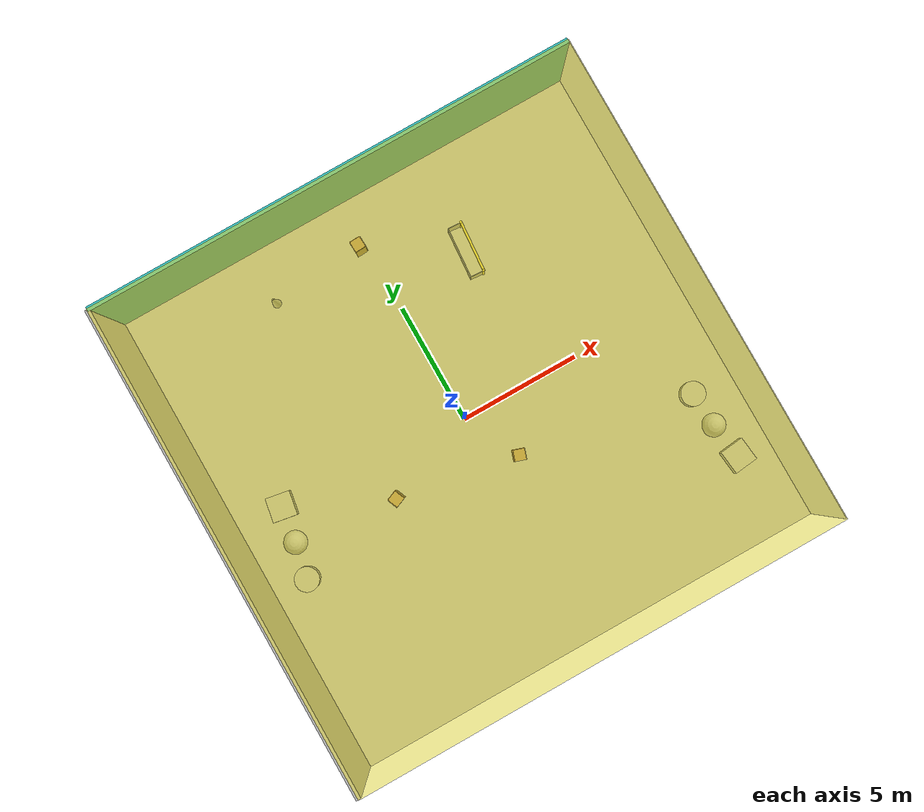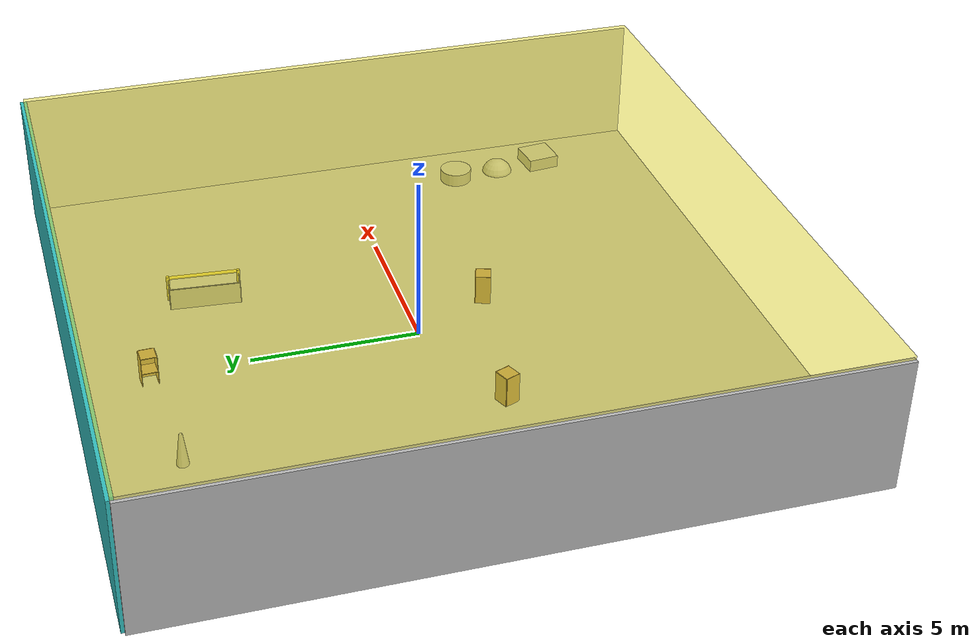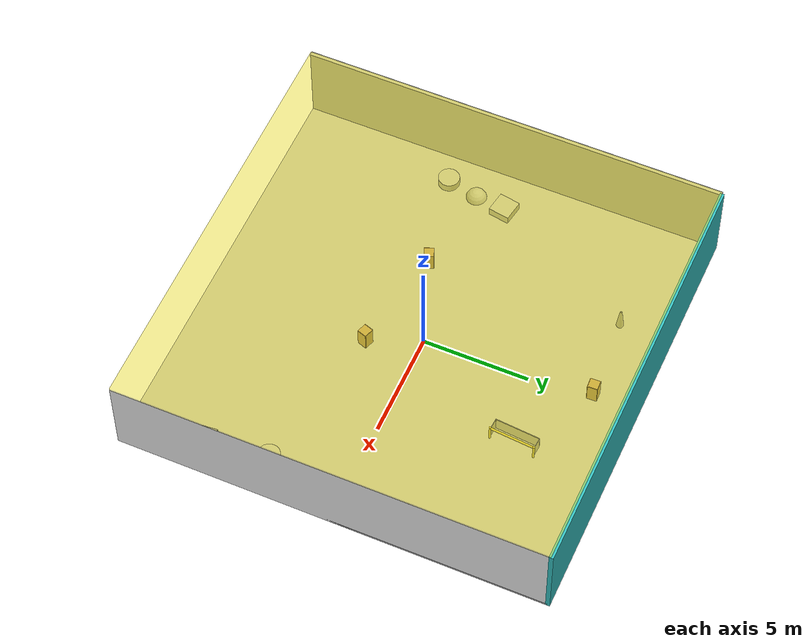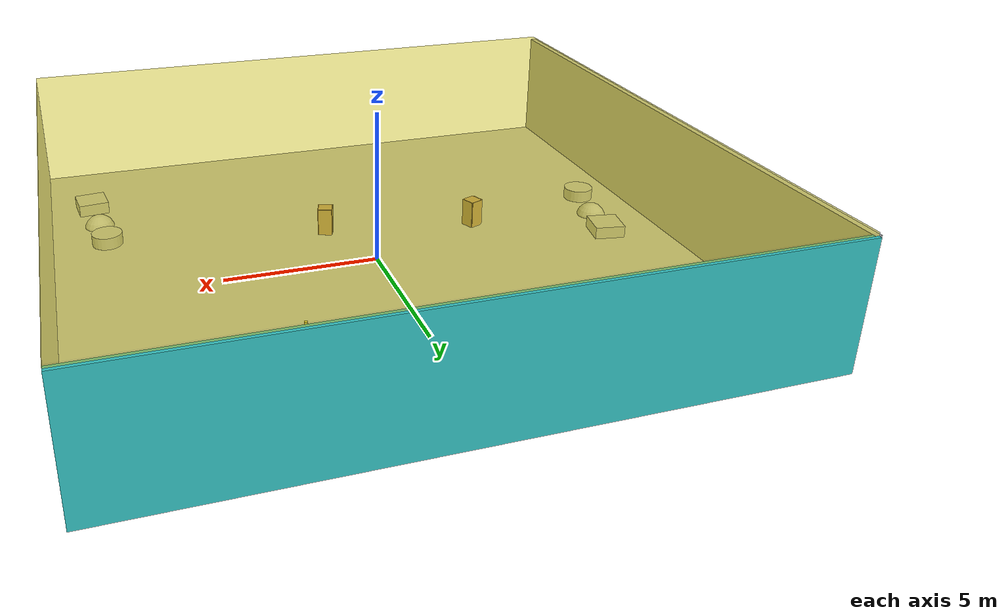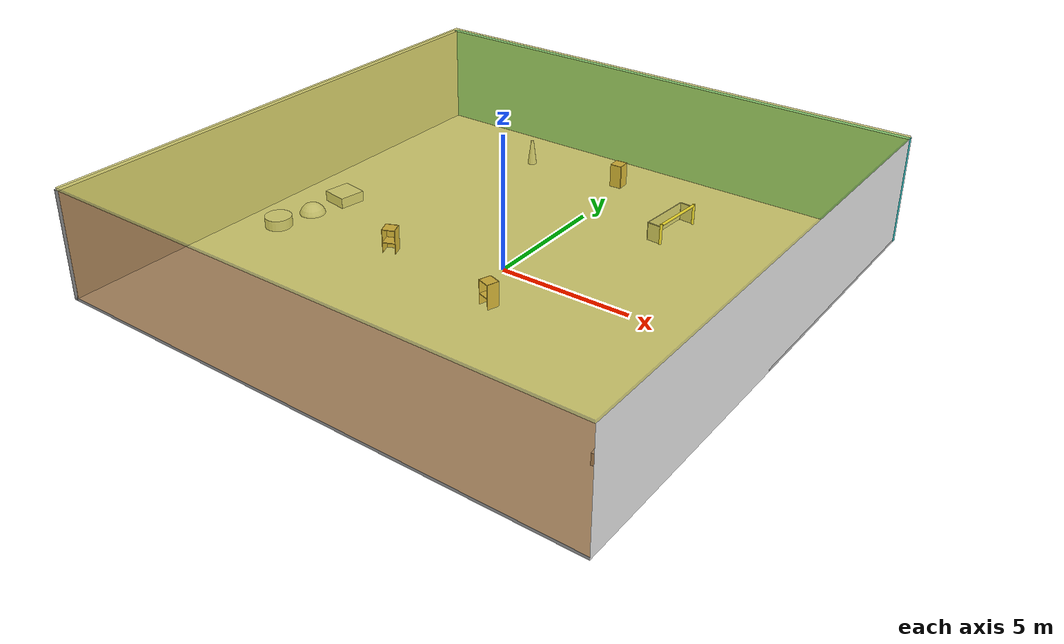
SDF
<sdf version="1.4">
 <world name="default">
  <physics type="ode">
   <max_step_size>0.001</max_step_size>
   <real_time_factor>1</real_time_factor>
   <real_time_update_rate>1000</real_time_update_rate>
   <gravity>0 0 -9.8</gravity>
  </physics>
  <scene><ambient>0.4 0.4 0.4 1</ambient><background>0.7 0.7 0.7 1</background><shadows>1</shadows></scene>
  <model name="Surrounding">
   <static>1</static>
   <link name="Ceiling">
    <collision name="Ceiling_Collision"><geometry><box><size>20 20 0.1</size></box></geometry></collision>
    <visual name="Ceiling_Visual">
     <geometry><box><size>20 20 0.1</size></box></geometry>
     <material>
      <script>
       <uri>file://media/materials/scripts/gazebo.material</uri>
       <name>Gazebo/YellowTransparent</name>
      </script>
     </material>
    </visual>
    <pose>0 0 4.05 0 0 0</pose>
   </link>
   <link name="Wall_South">
    <collision name="Wall_South_Collision">
     <geometry><box><size>20 0 4</size></box></geometry>
     <pose>0 0 2 0 -0 0</pose>
    </collision>
    <visual name="Wall_South_Visual">
     <pose>0 0 2 0 -0 0</pose>
     <geometry><box><size>20 0 4</size></box></geometry>
     <material>
      <script>
       <uri>file://media/materials/scripts/gazebo.material</uri>
       <name>Gazebo/OrangeTransparent</name>
      </script>
     </material>
    </visual>
    <velocity_decay><linear>0</linear><angular>0</angular></velocity_decay>
    <pose>0 -10 0 0 -0 0</pose>
   </link>
   <link name="Wall_East">
    <collision name="Wall_21_Collision">
     <geometry><box><size>20 0 4</size></box></geometry>
     <pose>0 0 2 0 -0 0</pose>
    </collision>
    <visual name="Wall_21_Visual">
     <pose>0 0 2 0 -0 0</pose>
     <geometry><box><size>20 0 4</size></box></geometry>
     <material>
      <script><uri>file://media/materials/scripts/gazebo.material</uri><name>Gazebo/White</name></script>
     </material>
    </visual>
    <velocity_decay><linear>0</linear><angular>0</angular></velocity_decay>
    <pose>10 0 0 0 -0 1.5708</pose>
   </link>
   <link name="Wall_North">
    <collision name="Wall_22_Collision">
     <geometry><box><size>20 0.2 4</size></box></geometry>
     <pose>0 0 2 0 -0 0</pose>
    </collision>
    <visual name="Wall_22_Visual">
     <pose>0 0 2 0 -0 0</pose>
     <geometry><box><size>20 0.2 4</size></box></geometry>
     <material>
      <script><uri>file://media/materials/scripts/gazebo.material</uri><name>Gazebo/Turquoise</name></script>
     </material>
    </visual>
    <velocity_decay><linear>0</linear><angular>0</angular></velocity_decay>
    <pose>0 10 0 0 -0 0</pose>
   </link>
   <link name="Wall_West">
    <collision name="Wall_23_Collision">
     <geometry><box><size>20 0.2 4</size></box></geometry>
     <pose>0 0 2 0 -0 0</pose>
    </collision>
    <visual name="Wall_23_Visual">
     <pose>0 0 2 0 -0 0</pose>
     <geometry><box><size>20 0.2 4</size></box></geometry>
     <material>
      <script><uri>file://media/materials/scripts/gazebo.material</uri><name>Gazebo/Pioneer2Body</name></script>
     </material>
    </visual>
    <velocity_decay><linear>0</linear><angular>0</angular></velocity_decay>
    <pose>-10 0 0 0 0 -1.5708</pose>
   </link>
   <link name="Ground_link">
    <collision name="collision">
     <pose>0 0 .05 0 -0 0</pose>
     <geometry><box><size>20 20 0.1</size></box></geometry>
    </collision>
    <visual name="visual">
     <pose>0 0 .05 0 -0 0</pose>
     <geometry><box><size>20 20 0.1</size></box></geometry>
     <material>
      <script><uri>file://media/materials/scripts/gazebo.material</uri><name>Gazebo/Pioneer2Body</name></script>
     </material>
    </visual>
   </link>
   <static>1</static>
  </model>
  <spherical_coordinates>
   <surface_model>EARTH_WGS84</surface_model>
   <latitude_deg>0</latitude_deg>
   <longitude_deg>0</longitude_deg>
   <elevation>0</elevation>
   <heading_deg>0</heading_deg>
  </spherical_coordinates>
  <light name="lightball_0" type="diffuse">
   <diffuse>0.8 0.8 0.8 1</diffuse>
   <specular>0.2 0.2 0.2 1</specular>
   <attenuation>
    <range>100</range>
    <constant>0.7</constant>
    <linear>0.01</linear>
    <quadratic>0.001</quadratic>
   </attenuation>
   <direction>-0.5 0.1 -0.9</direction>
   <pose>-4.82234496142 6.17025767702 2.31471824465 0 0 0</pose>
  </light>
  <light name="lightball_1" type="diffuse">
   <diffuse>0.8 0.8 0.8 1</diffuse>
   <specular>0.2 0.2 0.2 1</specular>
   <attenuation>
    <range>100</range>
    <constant>0.7</constant>
    <linear>0.01</linear>
    <quadratic>0.001</quadratic>
   </attenuation>
   <direction>-0.5 0.1 -0.9</direction>
   <pose>4.99850601402 -4.02258594119 2.4152732649 0 0 0</pose>
  </light>
  <light name="lightball_2" type="diffuse">
   <diffuse>0.8 0.8 0.8 1</diffuse>
   <specular>0.2 0.2 0.2 1</specular>
   <attenuation>
    <range>100</range>
    <constant>0.7</constant>
    <linear>0.01</linear>
    <quadratic>0.001</quadratic>
   </attenuation>
   <direction>-0.5 0.1 -0.9</direction>
   <pose>-0.832044895553 7.0870654293 2.80348548198 0 0 0</pose>
  </light>
  <light name="lightball_3" type="diffuse">
   <diffuse>0.8 0.8 0.8 1</diffuse>
   <specular>0.2 0.2 0.2 1</specular>
   <attenuation>
    <range>100</range>
    <constant>0.7</constant>
    <linear>0.01</linear>
    <quadratic>0.001</quadratic>
   </attenuation>
   <direction>-0.5 0.1 -0.9</direction>
   <pose>7.91256618123 -3.51055103407 2.55948021462 0 0 0</pose>
  </light>
  <light name="lightball_4" type="diffuse">
   <diffuse>0.8 0.8 0.8 1</diffuse>
   <specular>0.2 0.2 0.2 1</specular>
   <attenuation>
    <range>100</range>
    <constant>0.7</constant>
    <linear>0.01</linear>
    <quadratic>0.001</quadratic>
   </attenuation>
   <direction>-0.5 0.1 -0.9</direction>
   <pose>2.04320397591 -7.46686906175 2.4446069143 0 0 0</pose>
  </light>
  <light name="lightball_5" type="diffuse">
   <diffuse>0.8 0.8 0.8 1</diffuse>
   <specular>0.2 0.2 0.2 1</specular>
   <attenuation>
    <range>100</range>
    <constant>0.7</constant>
    <linear>0.01</linear>
    <quadratic>0.001</quadratic>
   </attenuation>
   <direction>-0.5 0.1 -0.9</direction>
   <pose>0.596957078481 4.76664096226 2.95272923477 0 0 0</pose>
  </light>
  <light name="lightball_6" type="diffuse">
   <diffuse>0.8 0.8 0.8 1</diffuse>
   <specular>0.2 0.2 0.2 1</specular>
   <attenuation>
    <range>100</range>
    <constant>0.7</constant>
    <linear>0.01</linear>
    <quadratic>0.001</quadratic>
   </attenuation>
   <direction>-0.5 0.1 -0.9</direction>
   <pose>3.84786410679 6.61203770873 3.21978191443 0 0 0</pose>
  </light>
  <light name="lightball_7" type="diffuse">
   <diffuse>0.8 0.8 0.8 1</diffuse>
   <specular>0.2 0.2 0.2 1</specular>
   <attenuation>
    <range>100</range>
    <constant>0.7</constant>
    <linear>0.01</linear>
    <quadratic>0.001</quadratic>
   </attenuation>
   <direction>-0.5 0.1 -0.9</direction>
   <pose>1.89163820516 -9.85122407624 0.739373129943 0 0 0</pose>
  </light>
  <light name="lightball_8" type="diffuse">
   <diffuse>0.8 0.8 0.8 1</diffuse>
   <specular>0.2 0.2 0.2 1</specular>
   <attenuation>
    <range>100</range>
    <constant>0.7</constant>
    <linear>0.01</linear>
    <quadratic>0.001</quadratic>
   </attenuation>
   <direction>-0.5 0.1 -0.9</direction>
   <pose>8.14092627813 -1.13882921531 1.59915000593 0 0 0</pose>
  </light>
  <light name="lightball_9" type="diffuse">
   <diffuse>0.8 0.8 0.8 1</diffuse>
   <specular>0.2 0.2 0.2 1</specular>
   <attenuation>
    <range>100</range>
    <constant>0.7</constant>
    <linear>0.01</linear>
    <quadratic>0.001</quadratic>
   </attenuation>
   <direction>-0.5 0.1 -0.9</direction>
   <pose>-6.59261747378 8.93758575215 2.78141725744 0 0 0</pose>
  </light>
  <light name="lightball_10" type="diffuse">
   <diffuse>0.8 0.8 0.8 1</diffuse>
   <specular>0.2 0.2 0.2 1</specular>
   <attenuation>
    <range>100</range>
    <constant>0.7</constant>
    <linear>0.01</linear>
    <quadratic>0.001</quadratic>
   </attenuation>
   <direction>-0.5 0.1 -0.9</direction>
   <pose>0.00315395709105 -6.83035906087 0.67266177434 0 0 0</pose>
  </light>
  <light name="lightball_11" type="diffuse">
   <diffuse>0.8 0.8 0.8 1</diffuse>
   <specular>0.2 0.2 0.2 1</specular>
   <attenuation>
    <range>100</range>
    <constant>0.7</constant>
    <linear>0.01</linear>
    <quadratic>0.001</quadratic>
   </attenuation>
   <direction>-0.5 0.1 -0.9</direction>
   <pose>1.56903478146 -9.00300013243 2.98833884495 0 0 0</pose>
  </light>
  <include>
   <uri>model://textured_shapes</uri>
   <pose>-8.20418486179 -0.949931265356 0 0 0 2.9741562925</pose>
  </include>
  <include><uri>model://cabinet</uri><pose>-3.86625669108 -1.43164813892 0 0 0 1.96253530613</pose></include>
  <include>
   <uri>model://construction_cone</uri>
   <pose>-4.23897207555 7.64896677685 0 0 0 2.35844269289</pose>
  </include>
  <include><uri>model://cabinet</uri><pose>-0.311458085079 7.9330708565 0 0 0 0.0437168448674</pose></include>
  <include><uri>model://cabinet</uri><pose>1.12337977258 -2.30188870445 0 0 0 1.24898771495</pose></include>
  <include>
   <uri>model://robocup_3Dsim_goal</uri>
   <pose>3.55978441119 5.69094915376 0 0 0 3.06518219477</pose>
  </include>
  <include>
   <uri>model://textured_shapes</uri>
   <pose>8.42980943522 -5.08633491132 0 0 0 0.111702710973</pose>
  </include>
 </world>
</sdf>

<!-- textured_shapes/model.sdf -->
<sdf version="1.6">
  <model name="textured_shapes">
    <pose>0 0 0.5 0 0 0</pose>
    <link name="box">
      <pose>0 -1.5 0 0 0 0</pose>
      <collision name="collision">
        <geometry>
          <box>
            <size>1 1 1</size>
          </box>
        </geometry>
      </collision>
      <visual name="visual">
        <geometry>
          <box>
            <size>1 1 1</size>
          </box>
        </geometry>
        <material>
          <script>
            <uri>model://../model_source/models/textured_shapes/materials/scripts</uri>
            <uri>model://../model_source/models/textured_shapes/materials/textures</uri>
            <name>TexturedShape/Squares</name>
          </script>
        </material>
      </visual>
    </link>
    <link name="sphere">
      <collision name="collision">
        <geometry>
          <sphere>
            <radius>0.5</radius>
          </sphere>
        </geometry>
      </collision>
      <visual name="visual">
        <geometry>
          <sphere>
            <radius>0.5</radius>
          </sphere>
        </geometry>
        <material>
          <script>
            <uri>model://../model_source/models/textured_shapes/materials/scripts</uri>
            <uri>model://../model_source/models/textured_shapes/materials/textures</uri>
            <name>TexturedShape/Squares</name>
          </script>
        </material>
      </visual>
    </link>
    <link name="cylinder">
      <pose>0 1.5 0 0 0 0</pose>
      <collision name="collision">
        <geometry>
          <cylinder>
            <radius>0.5</radius>
            <length>1</length>
          </cylinder>
        </geometry>
      </collision>
      <visual name="visual">
        <geometry>
          <cylinder>
            <radius>0.5</radius>
            <length>1</length>
          </cylinder>
        </geometry>
        <material>
          <script>
            <uri>model://../model_source/models/textured_shapes/materials/scripts</uri>
            <uri>model://../model_source/models/textured_shapes/materials/textures</uri>
            <name>TexturedShape/Squares</name>
          </script>
        </material>
      </visual>
    </link>
  </model>
</sdf>

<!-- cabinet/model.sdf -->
<sdf version="1.5">
  <model name="cabinet">
    <static>true</static>
    <link name="cabinet_bottom_plate">
      <inertial>
        <pose>0 0 -1 0 0 0</pose>
        <inertia>
          <ixx>2.050000</ixx>
          <ixy>0</ixy>
          <ixz>0</ixz>
          <iyy>2.050000</iyy>
          <iyz>0</iyz>
          <izz>2.050000</izz>
        </inertia>
        <mass>25.000000</mass>
      </inertial>
      <collision name="cabinet_bottom_plate_geom">
        <pose>0 0 0.010000 0 0 0</pose>
        <geometry>
          <box>
            <size>0.450000 0.450000 0.020000</size>
          </box>
        </geometry>
      </collision>
      <visual name="cabinet_bottom_plate_geom_visual">
        <pose>0 0 0.010000 0 0 0</pose>
        <geometry>
          <box>
            <size>0.450000 0.450000 0.020000</size>
          </box>
        </geometry>
        <material>
          <script>
            <uri>model://media/materials/scripts/gazebo.material</uri>
            <name>Gazebo/Wood</name>
          </script>
        </material>
      </visual>
      <collision name="cabinet_bottom_plate_geom_cabinet_back_plate">
        <pose>0.235000 0 0.510000 0 0 0</pose>
        <geometry>
          <box>
            <size>0.020000 0.450000 1.020000</size>
          </box>
        </geometry>
      </collision>
      <visual name="cabinet_bottom_plate_geom_cabinet_back_plate_visual">
        <pose>0.235000 0 0.510000 0 0 0</pose>
        <geometry>
          <box>
            <size>0.020000 0.450000 1.020000</size>
          </box>
        </geometry>
        <material>
          <script>
            <uri>model://media/materials/scripts/gazebo.material</uri>
            <name>Gazebo/Wood</name>
          </script>
        </material>
      </visual>
      <collision name="cabinet_bottom_plate_geom_cabinet_left_plate">
        <pose>0 0.235000 0.510000 0 0 0</pose>
        <geometry>
          <box>
            <size>0.450000 0.020000 1.020000</size>
          </box>
        </geometry>
      </collision>
      <visual name="cabinet_bottom_plate_geom_cabinet_left_plate_visual">
        <pose>0 0.235000 0.510000 0 0 0</pose>
        <geometry>
          <box>
            <size>0.450000 0.020000 1.020000</size>
          </box>
        </geometry>
        <material>
          <script>
            <uri>model://media/materials/scripts/gazebo.material</uri>
            <name>Gazebo/Wood</name>
          </script>
        </material>
      </visual>
      <collision name="cabinet_bottom_plate_geom_cabinet_middle_plate">
        <pose>0 0 0.510000 0 0 0</pose>
        <geometry>
          <box>
            <size>0.450000 0.450000 0.020000</size>
          </box>
        </geometry>
      </collision>
      <visual name="cabinet_bottom_plate_geom_cabinet_middle_plate_visual">
        <pose>0 0 0.510000 0 0 0</pose>
        <geometry>
          <box>
            <size>0.450000 0.450000 0.020000</size>
          </box>
        </geometry>
        <material>
          <script>
            <uri>model://media/materials/scripts/gazebo.material</uri>
            <name>Gazebo/Wood</name>
          </script>
        </material>
      </visual>
      <collision name="cabinet_bottom_plate_geom_cabinet_right_plate">
        <pose>0 -0.235000 0.510000 0 0 0</pose>
        <geometry>
          <box>
            <size>0.450000 0.020000 1.020000</size>
          </box>
        </geometry>
      </collision>
      <visual name="cabinet_bottom_plate_geom_cabinet_right_plate_visual">
        <pose>0 -0.235000 0.510000 0 0 0</pose>
        <geometry>
          <box>
            <size>0.450000 0.020000 1.020000</size>
          </box>
        </geometry>
        <material>
          <script>
            <uri>model://media/materials/scripts/gazebo.material</uri>
            <name>Gazebo/Wood</name>
          </script>
        </material>
      </visual>
      <collision name="cabinet_bottom_plate_geom_cabinet_top_plate">
        <pose>0 0 1.010000 0 0 0</pose>
        <geometry>
          <box>
            <size>0.450000 0.450000 0.020000</size>
          </box>
        </geometry>
      </collision>
      <visual name="cabinet_bottom_plate_geom_cabinet_top_plate_visual">
        <pose>0 0 1.010000 0 0 0</pose>
        <geometry>
          <box>
            <size>0.450000 0.450000 0.020000</size>
          </box>
        </geometry>
        <material>
          <script>
            <uri>model://media/materials/scripts/gazebo.material</uri>
            <name>Gazebo/Wood</name>
          </script>
        </material>
      </visual>
    </link>
  </model>
</sdf>

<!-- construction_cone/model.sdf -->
<sdf version="1.5">
  <model name="Construction Cone">
    <link name="link">
      <collision name="collision">
        <geometry>
          <mesh>
            <scale>10 10 10</scale>
            <uri>file://isr-testbed/construction_cone/meshes/construction_cone.dae</uri>
          </mesh>
        </geometry>
      </collision>
      <visual name="visual">
        <geometry>
          <mesh>
            <scale>10 10 10</scale>
            <uri>file://isr-testbed/construction_cone/meshes/construction_cone.dae</uri>
          </mesh>
        </geometry>
      </visual>
    </link>
  </model>
</sdf>

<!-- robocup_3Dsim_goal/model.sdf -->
<sdf version="1.5">
  <model name="robocup_3d_goal">
    <static>true</static>
    <link name="left_post">
      <pose>0 1.05 0.45 0 0 0</pose>
      <collision name="collision">
        <geometry>
          <cylinder>
            <radius>0.05</radius>
            <length>0.9</length>
          </cylinder>
        </geometry>
      </collision>
      <visual name="visual">
        <geometry>
          <cylinder>
            <radius>0.05</radius>
            <length>0.9</length>
          </cylinder>
        </geometry>
        <material>
          <script>
            <uri>file://media/materials/scripts/gazebo.material</uri>
            <name>Gazebo/ZincYellow</name>
          </script>
        </material>
      </visual>
    </link>
    <link name="left_support_horiz_lower">
      <pose>0.30 1.05 0.01 0 0 0</pose>
      <collision name="collision">
        <geometry>
          <box>
            <size>0.50 0.02 0.02</size>
          </box>
        </geometry>
      </collision>
      <visual name="visual">
        <geometry>
          <box>
            <size>0.50 0.02 0.02</size>
          </box>
        </geometry>
        <material>
          <script>
            <uri>file://media/materials/scripts/gazebo.material</uri>
            <name>Gazebo/White</name>
          </script>
        </material>
      </visual>
    </link>
    <link name="left_support_horiz_upper">
      <pose>0.30 1.05 0.79 0 0 0</pose>
      <collision name="collision">
        <geometry>
          <box>
            <size>0.50 0.02 0.02</size>
          </box>
        </geometry>
      </collision>
      <visual name="visual">
        <geometry>
          <box>
            <size>0.50 0.02 0.02</size>
          </box>
        </geometry>
        <material>
          <script>
            <uri>file://media/materials/scripts/gazebo.material</uri>
            <name>Gazebo/White</name>
          </script>
        </material>
      </visual>
    </link>
    <link name="left_support_vertical">
      <pose>0.56 1.05 0.4 0 1.5708 0</pose>
      <collision name="collision">
        <geometry>
          <box>
            <size>0.80 0.02 0.02</size>
          </box>
        </geometry>
      </collision>
      <visual name="visual">
        <geometry>
          <box>
            <size>0.80 0.02 0.02</size>
          </box>
        </geometry>
        <material>
          <script>
            <uri>file://media/materials/scripts/gazebo.material</uri>
            <name>Gazebo/White</name>
          </script>
        </material>
      </visual>
    </link>
    <link name="right_support_horiz_lower">
      <pose>0.30 -1.05 0.01 0 0 0</pose>
      <collision name="collision">
        <geometry>
          <box>
            <size>0.50 0.02 0.02</size>
          </box>
        </geometry>
      </collision>
      <visual name="visual">
        <geometry>
          <box>
            <size>0.50 0.02 0.02</size>
          </box>
        </geometry>
        <material>
          <script>
            <uri>file://media/materials/scripts/gazebo.material</uri>
            <name>Gazebo/White</name>
          </script>
        </material>
      </visual>
    </link>
    <link name="right_support_horiz_upper">
      <pose>0.30 -1.05 0.79 0 0 0</pose>
      <collision name="collision">
        <geometry>
          <box>
            <size>0.50 0.02 0.02</size>
          </box>
        </geometry>
      </collision>
      <visual name="visual">
        <geometry>
          <box>
            <size>0.50 0.02 0.02</size>
          </box>
        </geometry>
        <material>
          <script>
            <uri>file://media/materials/scripts/gazebo.material</uri>
            <name>Gazebo/White</name>
          </script>
        </material>
      </visual>
    </link>
    <link name="right_support_vertical">
      <pose>0.56 -1.05 0.4 0 1.5708 0</pose>
      <collision name="collision">
        <geometry>
          <box>
            <size>0.80 0.02 0.02</size>
          </box>
        </geometry>
      </collision>
      <visual name="visual">
        <geometry>
          <box>
            <size>0.80 0.02 0.02</size>
          </box>
        </geometry>
        <material>
          <script>
            <uri>file://media/materials/scripts/gazebo.material</uri>
            <name>Gazebo/White</name>
          </script>
        </material>
      </visual>
    </link>
    <link name="center_support_horiz_lower">
      <pose>0.56 0 0.01 0 1.5708 0</pose>
      <collision name="collision">
        <geometry>
          <box>
            <size>0.02 2.08 0.02</size>
          </box>
        </geometry>
      </collision>
      <visual name="visual">
        <geometry>
          <box>
            <size>0.02 2.08 0.02</size>
          </box>
        </geometry>
        <material>
          <script>
            <uri>file://media/materials/scripts/gazebo.material</uri>
            <name>Gazebo/White</name>
          </script>
        </material>
      </visual>
    </link>
    <link name="center_support_horiz_upper">
      <pose>0.56 0 0.79 0 1.5708 0</pose>
      <collision name="collision">
        <geometry>
          <box>
            <size>0.02 2.08 0.02</size>
          </box>
        </geometry>
      </collision>
      <visual name="visual">
        <geometry>
          <box>
            <size>0.02 2.08 0.02</size>
          </box>
        </geometry>
        <material>
          <script>
            <uri>file://media/materials/scripts/gazebo.material</uri>
            <name>Gazebo/White</name>
          </script>
        </material>
      </visual>
    </link>
    <link name="right_post">
      <pose>0 -1.05 0.45 0 0 0</pose>
      <collision name="collision">
        <geometry>
          <cylinder>
            <radius>0.05</radius>
            <length>0.9</length>
          </cylinder>
        </geometry>
      </collision>
      <visual name="visual">
        <geometry>
          <cylinder>
            <radius>0.05</radius>
            <length>0.9</length>
          </cylinder>
        </geometry>
        <material>
          <script>
            <uri>file://media/materials/scripts/gazebo.material</uri>
            <name>Gazebo/ZincYellow</name>
          </script>
        </material>
      </visual>
    </link>
    <link name="crossbar">
      <pose>0 0 0.85 1.57 1.57 0</pose>
      <collision name="collision">
        <geometry>
          <cylinder>
            <radius>0.05</radius>
            <length>2.0</length>
          </cylinder>
        </geometry>
      </collision>
      <visual name="visual">
        <geometry>
          <cylinder>
            <radius>0.05</radius>
            <length>2.0</length>
          </cylinder>
        </geometry>
        <material>
          <script>
            <uri>file://media/materials/scripts/gazebo.material</uri>
            <name>Gazebo/ZincYellow</name>
          </script>
        </material>
      </visual>
    </link>
    <link name="center_net">
      <pose>0.56 0 0.40 0 0 0</pose>
      <collision name="collision">
        <geometry>
          <box>
            <size>0.01 2.1 0.80</size>
          </box>
        </geometry>
      </collision>
      <visual name="visual">
        <geometry>
          <box>
            <size>0.01 2.1 0.80</size>
          </box>
        </geometry>
        <material>
          <script>
            <uri>model://../model_source/models/robocup09_spl_field/materials/scripts/</uri>
            <uri>model://../model_source/models/robocup09_spl_field/materials/textures/</uri>
            <name>RoboCup/Net</name>
          </script>
        </material>
      </visual>
    </link>
    <link name="left_net">
      <pose>0.30 1.05 0.40 0 0 0</pose>
      <collision name="collision">
        <geometry>
          <box>
            <size>0.50 0.01 0.76</size>
          </box>
        </geometry>
      </collision>
      <visual name="visual">
        <geometry>
          <box>
            <size>0.50 0.01 0.76</size>
          </box>
        </geometry>
        <material>
          <script>
            <uri>model://../model_source/models/robocup09_spl_field/materials/scripts/</uri>
            <uri>model://../model_source/models/robocup09_spl_field/materials/textures/</uri>
            <name>RoboCup/Net</name>
          </script>
        </material>
      </visual>
    </link>
    <link name="right_net">
      <pose>0.30 -1.05 0.40 0 0 0</pose>
      <collision name="collision">
        <geometry>
          <box>
            <size>0.50 0.01 0.76</size>
          </box>
        </geometry>
      </collision>
      <visual name="visual">
        <geometry>
          <box>
            <size>0.50 0.01 0.76</size>
          </box>
        </geometry>
        <material>
          <script>
            <uri>model://../model_source/models/robocup09_spl_field/materials/scripts/</uri>
            <uri>model://../model_source/models/robocup09_spl_field/materials/textures/</uri>
            <name>RoboCup/Net</name>
          </script>
        </material>
      </visual>
    </link>
  </model>
</sdf>
